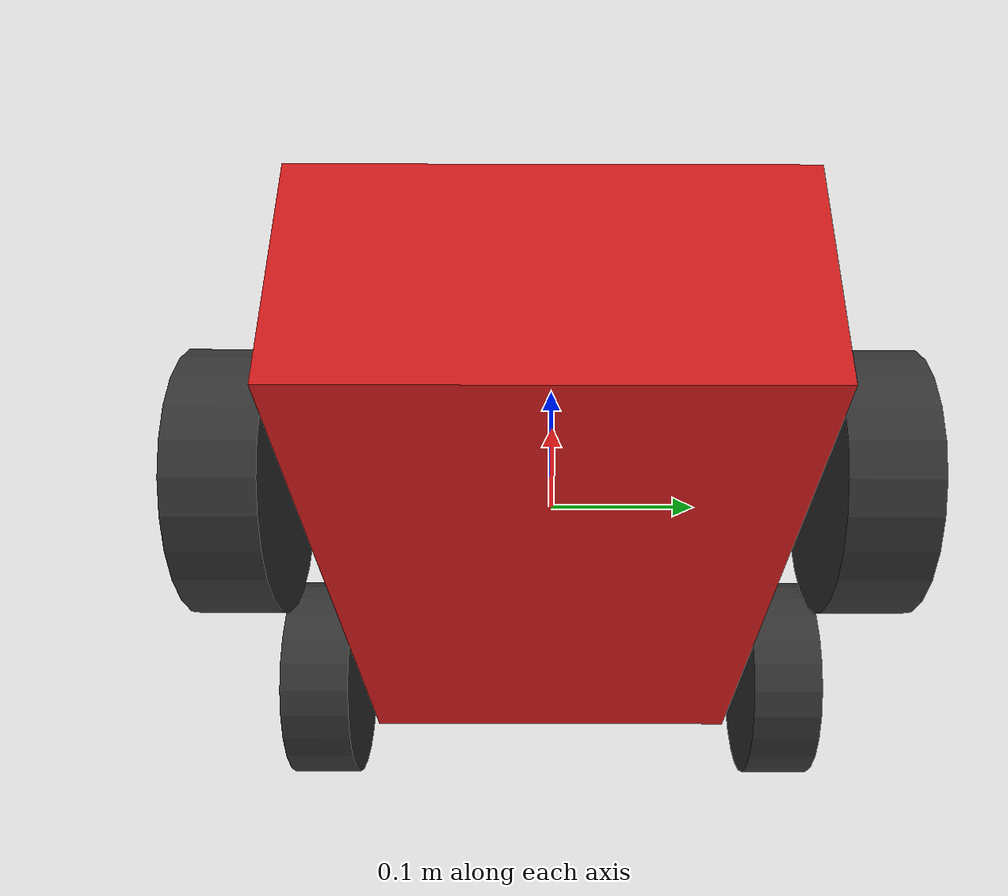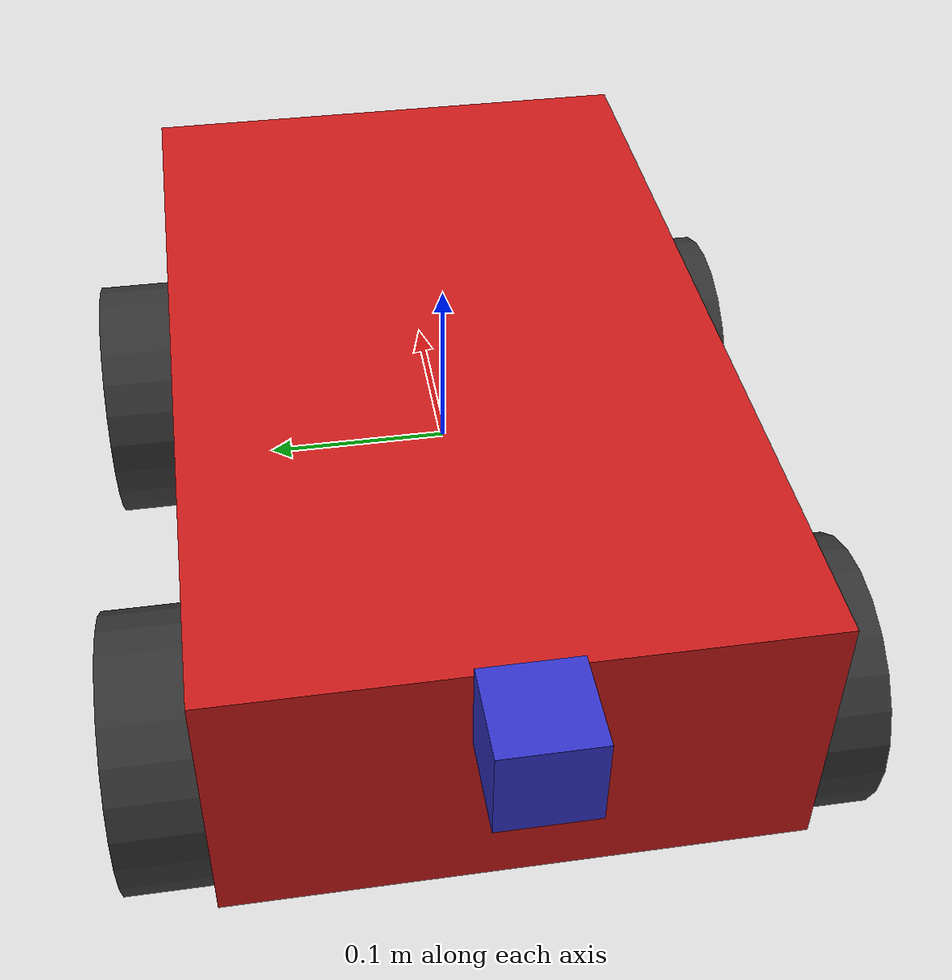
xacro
<?xml version="1.0"?>

<robot name="mobile_base" xmlns:xacro="http://www.ros.org/wiki/xacro">

  <!-- Arguments for Gazebo integration -->
  <xacro:arg name="gazebo_plugins" default="false"/>
  <xacro:arg name="gazebo_xacro_path" default=""/>
  <!-- Skip hardware ros2_control blocks for simulation -->
  <xacro:arg name="sim_mode" default="false"/>

  <!-- Parameters -->
  <xacro:property name="chassis_length" value="0.5"/>
  <xacro:property name="chassis_width" value="0.3"/>
  <xacro:property name="chassis_height" value="0.15"/>
  <xacro:property name="chassis_mass" value="20.0"/>

  <xacro:property name="wheel_radius" value="0.075"/>
  <xacro:property name="wheel_width" value="0.05"/>
  <xacro:property name="wheel_mass" value="2.5"/>
  <xacro:property name="wheel_offset_x" value="0.15"/>
  <xacro:property name="wheel_offset_y" value="0.175"/>
  <xacro:property name="wheel_offset_z" value="-0.07"/>

  <xacro:property name="lidar_radius" value="0.05"/>
  <xacro:property name="lidar_height" value="0.06"/>
  <xacro:property name="lidar_mass" value="0.5"/>

  <xacro:property name="camera_width" value="0.05"/>
  <xacro:property name="camera_height" value="0.05"/>
  <xacro:property name="camera_depth" value="0.05"/>
  <xacro:property name="camera_mass" value="0.2"/>

  <!-- Inertia Macros -->
  <xacro:macro name="box_inertia" params="m x y z">
    <inertia ixx="${m*(y*y+z*z)/12.0}" ixy="0.0" ixz="0.0"
             iyy="${m*(x*x+z*z)/12.0}" iyz="0.0"
             izz="${m*(x*x+y*y)/12.0}"/>
  </xacro:macro>

  <xacro:macro name="cylinder_inertia" params="m r h">
    <inertia ixx="${m*(3*r*r+h*h)/12.0}" ixy="0.0" ixz="0.0"
             iyy="${m*(3*r*r+h*h)/12.0}" iyz="0.0"
             izz="${m*r*r/2.0}"/>
  </xacro:macro>

  <!-- Base Link (Chassis) -->
  <link name="body_link">
    <visual>
      <origin xyz="0 0 0" rpy="0 0 0"/>
      <geometry>
        <box size="${chassis_length} ${chassis_width} ${chassis_height}"/>
      </geometry>
      <material name="chassis_red">
        <color rgba="0.8 0.1 0.1 1.0"/>
      </material>
    </visual>
    <collision>
      <origin xyz="0 0 0" rpy="0 0 0"/>
      <geometry>
        <box size="${chassis_length} ${chassis_width} ${chassis_height}"/>
      </geometry>
    </collision>
    <inertial>
      <origin xyz="0 0 0" rpy="0 0 0"/>
      <mass value="${chassis_mass}"/>
      <xacro:box_inertia m="${chassis_mass}" x="${chassis_length}" y="${chassis_width}" z="${chassis_height}"/>
    </inertial>
  </link>

  <!-- Wheel Macro -->
  <xacro:macro name="wheel" params="name reflect_y reflect_x">
    <joint name="${name}_joint" type="continuous">
      <parent link="body_link"/>
      <child link="${name}_link"/>
      <origin xyz="${reflect_x*wheel_offset_x} ${reflect_y*wheel_offset_y} ${wheel_offset_z}" rpy="0 0 0"/>
      <axis xyz="0 1 0"/>
      <limit effort="1000.0" velocity="100.0"/>
      <dynamics damping="1.0" friction="1.0"/>
    </joint>

    <link name="${name}_link">
      <visual>
        <origin xyz="0 0 0" rpy="${pi/2} 0 0"/>
        <geometry>
          <cylinder radius="${wheel_radius}" length="${wheel_width}"/>
        </geometry>
        <material name="wheel_gray">
          <color rgba="0.2 0.2 0.2 1.0"/>
        </material>
      </visual>
      <collision>
        <origin xyz="0 0 0" rpy="${pi/2} 0 0"/>
        <geometry>
          <cylinder radius="${wheel_radius}" length="${wheel_width}"/>
        </geometry>
      </collision>
      <inertial>
        <origin xyz="0 0 0" rpy="${pi/2} 0 0"/>
        <mass value="${wheel_mass}"/>
        <xacro:cylinder_inertia m="${wheel_mass}" r="${wheel_radius}" h="${wheel_width}"/>
      </inertial>
    </link>
  </xacro:macro>

  <!-- 4 Wheels -->
  <xacro:wheel name="front_right" reflect_y="-1" reflect_x="1"/>
  <xacro:wheel name="front_left" reflect_y="1" reflect_x="1"/>
  <xacro:wheel name="back_right" reflect_y="-1" reflect_x="-1"/>
  <xacro:wheel name="back_left" reflect_y="1" reflect_x="-1"/>

  <!-- Camera -->
  <joint name="camera_joint" type="fixed">
    <parent link="body_link"/>
    <child link="camera_link"/>
    <origin xyz="-${chassis_length/2 + camera_depth/2} 0 ${chassis_height/2 - 0.02}" rpy="0 0 0"/>
  </joint>

  <link name="camera_link">
    <visual>
      <geometry>
        <box size="${camera_depth} ${camera_width} ${camera_height}"/>
      </geometry>
      <material name="camera_blue">
        <color rgba="0.2 0.2 0.8 1.0"/>
      </material>
    </visual>
    <collision>
      <geometry>
        <box size="${camera_depth} ${camera_width} ${camera_height}"/>
      </geometry>
    </collision>
    <inertial>
      <mass value="${camera_mass}"/>
      <xacro:box_inertia m="${camera_mass}" x="${camera_depth}" y="${camera_width}" z="${camera_height}"/>
    </inertial>
  </link>

  <joint name="camera_optical_joint" type="fixed">
    <parent link="camera_link"/>
    <child link="camera_link_optical"/>
    <origin xyz="0 0 0" rpy="${-pi/2} 0 ${-pi/2}"/>
  </joint>
  <link name="camera_link_optical"/>

  <!-- Arm Mount Point -->
  <joint name="arm_mount_joint" type="fixed">
    <parent link="body_link"/>
    <child link="arm_mount_link"/>
    <origin xyz="0.15 0 ${chassis_height/2}" rpy="0 0 0"/>
  </joint>
  <link name="arm_mount_link"/>

  <!-- Include Gazebo plugins if requested -->
  <xacro:if value="$(arg gazebo_plugins)">
    <xacro:include filename="$(arg gazebo_xacro_path)"/>
  </xacro:if>

  <!-- ROS2_CONTROL CONFIGURATION                -->
  <!-- (Skip in simulation mode - Gazebo provides its own) -->

  <xacro:unless value="$(arg sim_mode)">
  <ros2_control name="mobile_base_system" type="system">
    <hardware>
      <plugin>base_controller/BaseHardwareInterface</plugin>
      <param name="serial_port">/dev/ttyACM0</param>
      <param name="wheel_radius">0.075</param>
      <param name="wheel_base">0.35</param>
      <param name="encoder_cpr">360</param>
    </hardware>

    <joint name="front_left_joint">
      <command_interface name="velocity"/>
      <state_interface name="position"/>
      <state_interface name="velocity"/>
    </joint>

    <joint name="front_right_joint">
      <command_interface name="velocity"/>
      <state_interface name="position"/>
      <state_interface name="velocity"/>
    </joint>

    <joint name="back_left_joint">
      <command_interface name="velocity"/>
      <state_interface name="position"/>
      <state_interface name="velocity"/>
    </joint>

    <joint name="back_right_joint">
      <command_interface name="velocity"/>
      <state_interface name="position"/>
      <state_interface name="velocity"/>
    </joint>
  </ros2_control>

  <ros2_control name="arm_system" type="system">
    <hardware>
      <plugin>arm_controller/ArmHardwareInterface</plugin>
      <param name="serial_port">/dev/ttyACM1</param>
    </hardware>

    <joint name="joint_1">
      <command_interface name="position"/>
      <state_interface name="position"/>
    </joint>
    <joint name="joint_2">
      <command_interface name="position"/>
      <state_interface name="position"/>
    </joint>
    <joint name="joint_3">
      <command_interface name="position"/>
      <state_interface name="position"/>
    </joint>
    <joint name="joint_4">
      <command_interface name="position"/>
      <state_interface name="position"/>
    </joint>
    <joint name="gripper_base_joint">
      <command_interface name="position"/>
      <state_interface name="position"/>
    </joint>
    <joint name="left_gear_joint">
      <command_interface name="position"/>
      <state_interface name="position"/>
    </joint>
  </ros2_control>
  </xacro:unless>

</robot>
